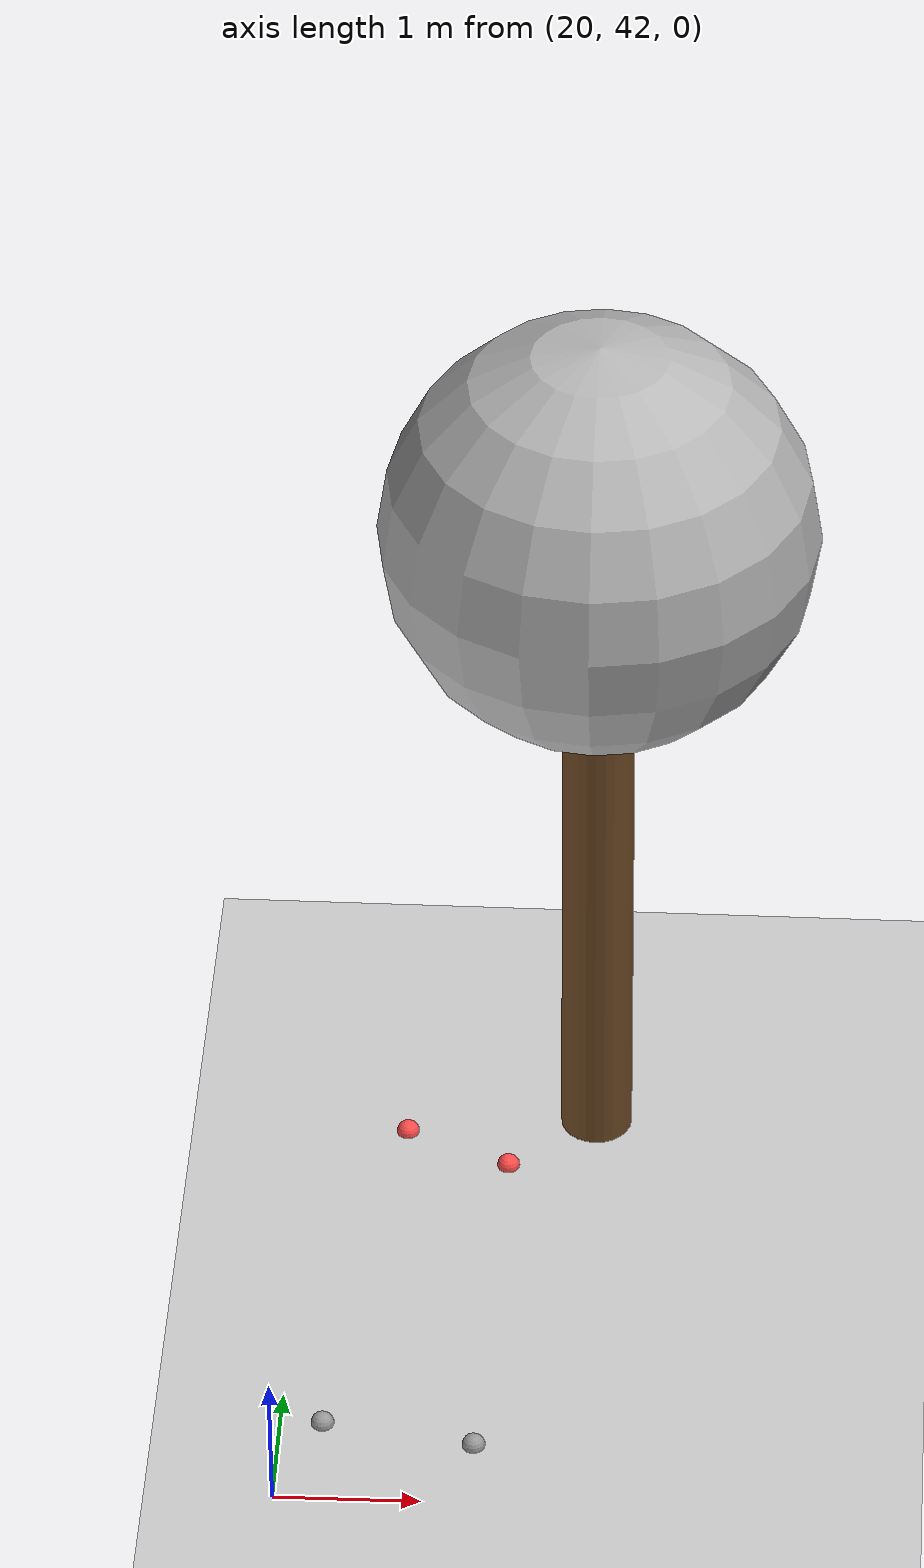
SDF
<sdf version="1.7">
 <world name="default">
  <model name="ground_plane">
   <static>1</static>
   <link name="link">
    <collision name="collision">
     <geometry><plane><normal>0 0 1</normal><size>100 100</size></plane></geometry>
     <surface>
      <contact><collide_bitmask>65535</collide_bitmask></contact>
      <friction><ode><mu>100</mu><mu2>50</mu2></ode></friction>
     </surface>
    </collision>
    <visual name="visual">
     <cast_shadows>0</cast_shadows>
     <geometry><plane><normal>0 0 1</normal><size>100 100</size></plane></geometry>
     <material>
      <script><uri>file://media/materials/scripts/gazebo.material</uri><name>Gazebo/Grey</name></script>
     </material>
    </visual>
   </link>
  </model>
  <model name="tree_simple_6">
   <static>1</static>
   <link name="link">
    <pose>0 0 0.1 0 -0 0</pose>
    <inertial>
     <mass>666</mass>
     <inertia>
      <ixx>0.0861167</ixx>
      <ixy>0</ixy>
      <ixz>0</ixz>
      <iyy>0.0861167</iyy>
      <iyz>0</iyz>
      <izz>0.0861167</izz>
     </inertia>
    </inertial>
    <collision name="collision_trunk">
     <pose>0 0 2 0 -0 0</pose>
     <geometry><cylinder><radius>0.25</radius><length>4</length></cylinder></geometry>
     <surface>
      <contact>
       <poissons_ratio>0.347</poissons_ratio>
       <elastic_modulus>8.8e+09</elastic_modulus>
       <ode><kp>100000</kp><kd>100</kd><max_vel>100</max_vel><min_depth>0.001</min_depth></ode>
      </contact>
      <friction>
       <torsional>
        <coefficient>1</coefficient>
        <use_patch_radius>0</use_patch_radius>
        <surface_radius>0.01</surface_radius>
       </torsional>
      </friction>
     </surface>
    </collision>
    <collision name="collision_treetop">
     <pose>0 0 5.2 0 -0 0</pose>
     <geometry><sphere><radius>1.5</radius></sphere></geometry>
     <surface>
      <contact>
       <poissons_ratio>0.347</poissons_ratio>
       <elastic_modulus>8.8e+09</elastic_modulus>
       <ode><kp>100000</kp><kd>100</kd><max_vel>100</max_vel><min_depth>0.001</min_depth></ode>
      </contact>
      <friction>
       <torsional>
        <coefficient>1</coefficient>
        <use_patch_radius>0</use_patch_radius>
        <surface_radius>0.01</surface_radius>
       </torsional>
      </friction>
     </surface>
    </collision>
    <visual name="trunk">
     <pose>0 0 2 0 -0 0</pose>
     <geometry><cylinder><radius>0.25</radius><length>4</length></cylinder></geometry>
     <material>
      <script>
       <uri>model://tree_simple/scripts</uri>
       <uri>model://tree_simple/materials/textures</uri>
       <name>TreeSimple/Trunk</name>
      </script>
     </material>
    </visual>
    <visual name="treetop">
     <pose>0 0 5.2 0 -0 0</pose>
     <geometry><sphere><radius>1.5</radius></sphere></geometry>
     <material>
      <script>
       <uri>model://tree_simple/scripts</uri>
       <uri>model://tree_simple/materials/textures</uri>
       <name>TreeSimple/Treetop</name>
      </script>
     </material>
    </visual>
   </link>
   <pose>22 46 -0.1 0 -0 0</pose>
  </model>
  <model name="seed_red_24">
   <link name="link">
    <inertial>
     <mass>1</mass>
     <inertia><ixx>0.1</ixx><ixy>0</ixy><ixz>0</ixz><iyy>0.1</iyy><iyz>0</iyz><izz>0.1</izz></inertia>
    </inertial>
    <visual name="visual">
     <geometry><sphere><radius>0.08</radius></sphere></geometry>
     <material>
      <script><name>Gazebo/Grey</name><uri>file://media/materials/scripts/gazebo.material</uri></script>
      <shader type="pixel"><normal_map>__default__</normal_map></shader>
      <ambient>1 0.3 0.3 1</ambient>
      <diffuse>0.7 0.7 0.7 1</diffuse>
      <specular>0.01 0.01 0.01 1</specular>
      <emissive>0 0 0 1</emissive>
     </material>
    </visual>
    <collision name="collision">
     <geometry><sphere><radius>0.0005</radius></sphere></geometry>
     <surface>
      <friction>
       <ode><mu>1</mu><mu2>1</mu2><fdir1>0 0 0</fdir1><slip1>0</slip1><slip2>0</slip2></ode>
       <torsional>
        <coefficient>1</coefficient>
        <patch_radius>0</patch_radius>
        <surface_radius>0</surface_radius>
        <use_patch_radius>1</use_patch_radius>
        <ode><slip>0</slip></ode>
       </torsional>
      </friction>
      <bounce><restitution_coefficient>0</restitution_coefficient><threshold>1e+06</threshold></bounce>
      <contact>
       <collide_without_contact>0</collide_without_contact>
       <collide_without_contact_bitmask>1</collide_without_contact_bitmask>
       <collide_bitmask>1</collide_bitmask>
       <ode>
        <soft_cfm>0</soft_cfm>
        <soft_erp>0.2</soft_erp>
        <kp>1e+13</kp>
        <kd>1</kd>
        <max_vel>0.01</max_vel>
        <min_depth>0</min_depth>
       </ode>
       <bullet>
        <split_impulse>1</split_impulse>
        <split_impulse_penetration_threshold>-0.01</split_impulse_penetration_threshold>
        <soft_cfm>0</soft_cfm>
        <soft_erp>0.2</soft_erp>
        <kp>1e+13</kp>
        <kd>1</kd>
       </bullet>
      </contact>
     </surface>
    </collision>
   </link>
   <static>0</static>
   <pose>21.3995 45.4795 0.0005 0 -0 0</pose>
  </model>
  <model name="seed_red_25">
   <link name="link">
    <inertial>
     <mass>1</mass>
     <inertia><ixx>0.1</ixx><ixy>0</ixy><ixz>0</ixz><iyy>0.1</iyy><iyz>0</iyz><izz>0.1</izz></inertia>
    </inertial>
    <visual name="visual">
     <geometry><sphere><radius>0.08</radius></sphere></geometry>
     <material>
      <script><name>Gazebo/Grey</name><uri>file://media/materials/scripts/gazebo.material</uri></script>
      <shader type="pixel"><normal_map>__default__</normal_map></shader>
      <ambient>1 0.3 0.3 1</ambient>
      <diffuse>0.7 0.7 0.7 1</diffuse>
      <specular>0.01 0.01 0.01 1</specular>
      <emissive>0 0 0 1</emissive>
     </material>
    </visual>
    <collision name="collision">
     <geometry><sphere><radius>0.0005</radius></sphere></geometry>
     <surface>
      <friction>
       <ode><mu>1</mu><mu2>1</mu2><fdir1>0 0 0</fdir1><slip1>0</slip1><slip2>0</slip2></ode>
       <torsional>
        <coefficient>1</coefficient>
        <patch_radius>0</patch_radius>
        <surface_radius>0</surface_radius>
        <use_patch_radius>1</use_patch_radius>
        <ode><slip>0</slip></ode>
       </torsional>
      </friction>
      <bounce><restitution_coefficient>0</restitution_coefficient><threshold>1e+06</threshold></bounce>
      <contact>
       <collide_without_contact>0</collide_without_contact>
       <collide_without_contact_bitmask>1</collide_without_contact_bitmask>
       <collide_bitmask>1</collide_bitmask>
       <ode>
        <soft_cfm>0</soft_cfm>
        <soft_erp>0.2</soft_erp>
        <kp>1e+13</kp>
        <kd>1</kd>
        <max_vel>0.01</max_vel>
        <min_depth>0</min_depth>
       </ode>
       <bullet>
        <split_impulse>1</split_impulse>
        <split_impulse_penetration_threshold>-0.01</split_impulse_penetration_threshold>
        <soft_cfm>0</soft_cfm>
        <soft_erp>0.2</soft_erp>
        <kp>1e+13</kp>
        <kd>1</kd>
       </bullet>
      </contact>
     </surface>
    </collision>
   </link>
   <static>0</static>
   <pose>21.9689 46.383 0.0005 0 -0 0</pose>
  </model>
  <model name="seed_red_30">
   <link name="link">
    <inertial>
     <mass>1</mass>
     <inertia><ixx>0.1</ixx><ixy>0</ixy><ixz>0</ixz><iyy>0.1</iyy><iyz>0</iyz><izz>0.1</izz></inertia>
    </inertial>
    <visual name="visual">
     <geometry><sphere><radius>0.08</radius></sphere></geometry>
     <material>
      <script><name>Gazebo/Grey</name><uri>file://media/materials/scripts/gazebo.material</uri></script>
      <shader type="pixel"><normal_map>__default__</normal_map></shader>
      <ambient>1 0.3 0.3 1</ambient>
      <diffuse>0.7 0.7 0.7 1</diffuse>
      <specular>0.01 0.01 0.01 1</specular>
      <emissive>0 0 0 1</emissive>
     </material>
    </visual>
    <collision name="collision">
     <geometry><sphere><radius>0.0005</radius></sphere></geometry>
     <surface>
      <friction>
       <ode><mu>1</mu><mu2>1</mu2><fdir1>0 0 0</fdir1><slip1>0</slip1><slip2>0</slip2></ode>
       <torsional>
        <coefficient>1</coefficient>
        <patch_radius>0</patch_radius>
        <surface_radius>0</surface_radius>
        <use_patch_radius>1</use_patch_radius>
        <ode><slip>0</slip></ode>
       </torsional>
      </friction>
      <bounce><restitution_coefficient>0</restitution_coefficient><threshold>1e+06</threshold></bounce>
      <contact>
       <collide_without_contact>0</collide_without_contact>
       <collide_without_contact_bitmask>1</collide_without_contact_bitmask>
       <collide_bitmask>1</collide_bitmask>
       <ode>
        <soft_cfm>0</soft_cfm>
        <soft_erp>0.2</soft_erp>
        <kp>1e+13</kp>
        <kd>1</kd>
        <max_vel>0.01</max_vel>
        <min_depth>0</min_depth>
       </ode>
       <bullet>
        <split_impulse>1</split_impulse>
        <split_impulse_penetration_threshold>-0.01</split_impulse_penetration_threshold>
        <soft_cfm>0</soft_cfm>
        <soft_erp>0.2</soft_erp>
        <kp>1e+13</kp>
        <kd>1</kd>
       </bullet>
      </contact>
     </surface>
    </collision>
   </link>
   <static>0</static>
   <pose>20.6646 45.8106 0.0005 0 -0 0</pose>
  </model>
  <model name="seed_black_1">
   <link name="link">
    <inertial>
     <mass>1</mass>
     <inertia><ixx>0.1</ixx><ixy>0</ixy><ixz>0</ixz><iyy>0.1</iyy><iyz>0</iyz><izz>0.1</izz></inertia>
    </inertial>
    <visual name="visual">
     <geometry><sphere><radius>0.08</radius></sphere></geometry>
     <material>
      <script><name>Gazebo/Grey</name><uri>file://media/materials/scripts/gazebo.material</uri></script>
      <shader type="pixel"><normal_map>__default__</normal_map></shader>
      <ambient>0 0 0 1</ambient>
      <diffuse>0.7 0.7 0.7 1</diffuse>
      <specular>0.01 0.01 0.01 1</specular>
      <emissive>0 0 0 1</emissive>
     </material>
    </visual>
    <collision name="collision">
     <geometry><sphere><radius>0.0005</radius></sphere></geometry>
     <surface>
      <friction>
       <ode><mu>1</mu><mu2>1</mu2><fdir1>0 0 0</fdir1><slip1>0</slip1><slip2>0</slip2></ode>
       <torsional>
        <coefficient>1</coefficient>
        <patch_radius>0</patch_radius>
        <surface_radius>0</surface_radius>
        <use_patch_radius>1</use_patch_radius>
        <ode><slip>0</slip></ode>
       </torsional>
      </friction>
      <bounce><restitution_coefficient>0</restitution_coefficient><threshold>1e+06</threshold></bounce>
      <contact>
       <collide_without_contact>0</collide_without_contact>
       <collide_without_contact_bitmask>1</collide_without_contact_bitmask>
       <collide_bitmask>1</collide_bitmask>
       <ode>
        <soft_cfm>0</soft_cfm>
        <soft_erp>0.2</soft_erp>
        <kp>1e+13</kp>
        <kd>1</kd>
        <max_vel>0.01</max_vel>
        <min_depth>0</min_depth>
       </ode>
       <bullet>
        <split_impulse>1</split_impulse>
        <split_impulse_penetration_threshold>-0.01</split_impulse_penetration_threshold>
        <soft_cfm>0</soft_cfm>
        <soft_erp>0.2</soft_erp>
        <kp>1e+13</kp>
        <kd>1</kd>
       </bullet>
      </contact>
     </surface>
    </collision>
   </link>
   <static>0</static>
   <pose>20.2822 42.744 0.0005 0 -0 0</pose>
  </model>
  <model name="seed_black_3">
   <link name="link">
    <inertial>
     <mass>1</mass>
     <inertia><ixx>0.1</ixx><ixy>0</ixy><ixz>0</ixz><iyy>0.1</iyy><iyz>0</iyz><izz>0.1</izz></inertia>
    </inertial>
    <visual name="visual">
     <geometry><sphere><radius>0.08</radius></sphere></geometry>
     <material>
      <script><name>Gazebo/Grey</name><uri>file://media/materials/scripts/gazebo.material</uri></script>
      <shader type="pixel"><normal_map>__default__</normal_map></shader>
      <ambient>0 0 0 1</ambient>
      <diffuse>0.7 0.7 0.7 1</diffuse>
      <specular>0.01 0.01 0.01 1</specular>
      <emissive>0 0 0 1</emissive>
     </material>
    </visual>
    <collision name="collision">
     <geometry><sphere><radius>0.0005</radius></sphere></geometry>
     <surface>
      <friction>
       <ode><mu>1</mu><mu2>1</mu2><fdir1>0 0 0</fdir1><slip1>0</slip1><slip2>0</slip2></ode>
       <torsional>
        <coefficient>1</coefficient>
        <patch_radius>0</patch_radius>
        <surface_radius>0</surface_radius>
        <use_patch_radius>1</use_patch_radius>
        <ode><slip>0</slip></ode>
       </torsional>
      </friction>
      <bounce><restitution_coefficient>0</restitution_coefficient><threshold>1e+06</threshold></bounce>
      <contact>
       <collide_without_contact>0</collide_without_contact>
       <collide_without_contact_bitmask>1</collide_without_contact_bitmask>
       <collide_bitmask>1</collide_bitmask>
       <ode>
        <soft_cfm>0</soft_cfm>
        <soft_erp>0.2</soft_erp>
        <kp>1e+13</kp>
        <kd>1</kd>
        <max_vel>0.01</max_vel>
        <min_depth>0</min_depth>
       </ode>
       <bullet>
        <split_impulse>1</split_impulse>
        <split_impulse_penetration_threshold>-0.01</split_impulse_penetration_threshold>
        <soft_cfm>0</soft_cfm>
        <soft_erp>0.2</soft_erp>
        <kp>1e+13</kp>
        <kd>1</kd>
       </bullet>
      </contact>
     </surface>
    </collision>
   </link>
   <static>0</static>
   <pose>21.3242 42.5787 0.0005 0 -0 0</pose>
  </model>
 </world>
</sdf>
